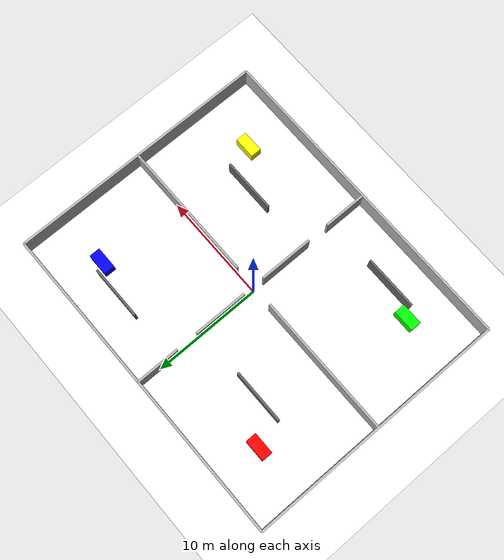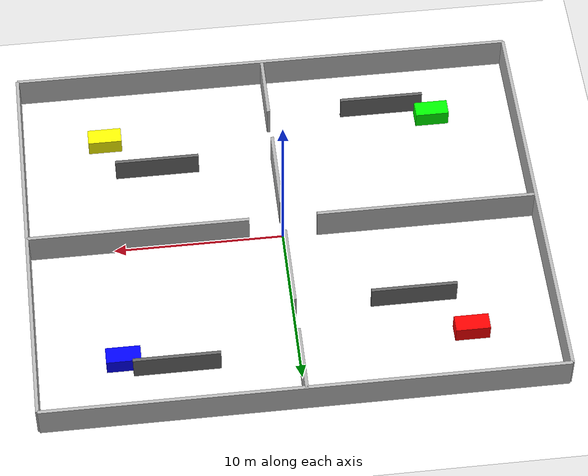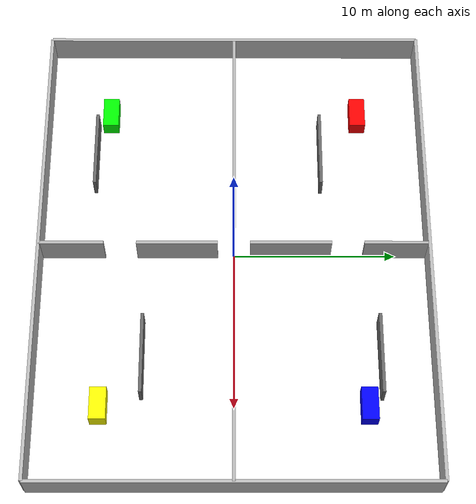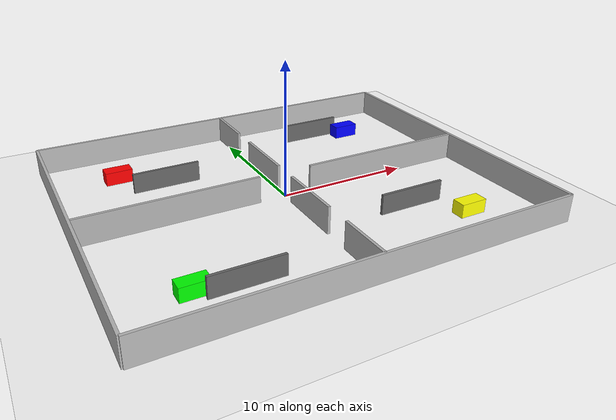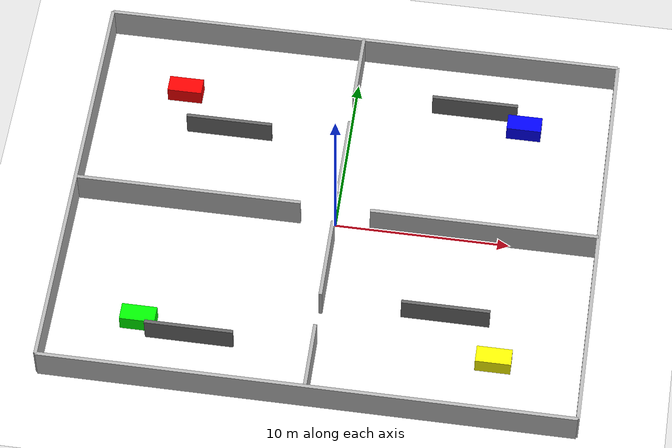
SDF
<?xml version="1.0"?>
<sdf version="1.7">
  <world name="warehouse">

    <!-- Plugins needed for the simulation                     -->
    <!-- Gazebo uses system plugins to enable core features   -->

    <!-- Physics engine: enables dynamics simulation
     (gravity, collisions, wheel motion, forces) -->
    <plugin name='gz::sim::systems::Physics'
      filename='gz-sim-physics-system' />

    <!-- User commands: allows external commands such as
     spawning or deleting entities from ROS or CLI -->
    <plugin name='gz::sim::systems::UserCommands'
      filename='gz-sim-user-commands-system' />

    <!-- Scene broadcaster: sends simulation updates to
     the GUI so objects move correctly in the viewer -->
    <plugin name='gz::sim::systems::SceneBroadcaster'
      filename='gz-sim-scene-broadcaster-system' />

    <!-- Contact system: enables collision detection and
     contact information. Critical for physics interactions -->
    <plugin name='gz::sim::systems::Contact'
      filename='gz-sim-contact-system' />

    <!-- Sensors system: enables simulated sensors such as
     LiDAR, cameras, IMU, etc. Without this plugin
     sensors exist but do not produce data -->
    <plugin name='gz::sim::systems::Sensors'
      filename='gz-sim-sensors-system' />

    <!-- Rendering engine used by sensors.
       "ogre2" is standard but WSL2 often works better with "ogre". -->

    <physics name='1ms' type='ignored'>
      <max_step_size>0.001</max_step_size>
      <real_time_factor>1</real_time_factor>
      <real_time_update_rate>1000</real_time_update_rate>
    </physics>

    <scene>
      <ambient>0.400000006 0.400000006 0.400000006 1</ambient>
      <background>0.699999988 0.699999988 0.699999988 1</background>
      <shadows>true</shadows>
    </scene>

    <light name='sun' type='directional'>
      <pose>0 0 10 0 0 0</pose>
      <cast_shadows>true</cast_shadows>
      <intensity>1</intensity>
      <direction>-0.5 0.10000000000000001 -0.90000000000000002</direction>
      <diffuse>0.800000012 0.800000012 0.800000012 1</diffuse>
      <specular>0.200000003 0.200000003 0.200000003 1</specular>
      <attenuation>
        <range>1000</range>
        <linear>0.01</linear>
        <constant>0.90000000000000002</constant>
        <quadratic>0.001</quadratic>
      </attenuation>
      <spot>
        <inner_angle>0</inner_angle>
        <outer_angle>0</outer_angle>
        <falloff>0</falloff>
      </spot>
    </light>

    <!-- Sun -->

    <!-- White floor -->
    <model name="white_floor">
      <static>true</static>
      <pose>0 0 0 0 0 0</pose>

      <link name="floor_link">

        <collision name="collision">
          <geometry>
            <plane>
              <normal>0 0 1</normal>
              <size>40 40</size>
            </plane>
          </geometry>
        </collision>

        <visual name="visual">
          <geometry>
            <plane>
              <normal>0 0 1</normal>
              <size>40 40</size>
            </plane>
          </geometry>

          <material>
            <ambient>1 1 1 1</ambient>
            <diffuse>1 1 1 1</diffuse>
            <specular>0.1 0.1 0.1 1</specular>
          </material>

        </visual>

      </link>
    </model>
    <!-- OUTER WALLS -->

    <model name="wall_north">
      <static>true</static>
      <pose>0 12 1 0 0 0</pose>
      <link name="link">
        <collision name="collision">
          <geometry>
            <box>
              <size>30 0.2 2</size>
            </box>
          </geometry>
        </collision>
        <visual name="visual">
          <geometry>
            <box>
              <size>30 0.2 2</size>
            </box>
          </geometry>
        </visual>
      </link>
    </model>

    <model name="wall_south">
      <static>true</static>
      <pose>0 -12 1 0 0 0</pose>
      <link name="link">
        <collision name="collision">
          <geometry>
            <box>
              <size>30 0.2 2</size>
            </box>
          </geometry>
        </collision>
        <visual name="visual">
          <geometry>
            <box>
              <size>30 0.2 2</size>
            </box>
          </geometry>
        </visual>
      </link>
    </model>

    <model name="wall_east">
      <static>true</static>
      <pose>15 0 1 0 0 0</pose>
      <link name="link">
        <collision name="collision">
          <geometry>
            <box>
              <size>0.2 24 2</size>
            </box>
          </geometry>
        </collision>
        <visual name="visual">
          <geometry>
            <box>
              <size>0.2 24 2</size>
            </box>
          </geometry>
        </visual>
      </link>
    </model>

    <model name="wall_west">
      <static>true</static>
      <pose>-15 0 1 0 0 0</pose>
      <link name="link">
        <collision name="collision">
          <geometry>
            <box>
              <size>0.2 24 2</size>
            </box>
          </geometry>
        </collision>
        <visual name="visual">
          <geometry>
            <box>
              <size>0.2 24 2</size>
            </box>
          </geometry>
        </visual>
      </link>
    </model>

    <!-- INTERNAL WALLS -->

    <!-- Horizontal wall across the middle with one central opening -->
    <model name="mid_wall_left">
      <static>true</static>
      <pose>-8.5 0 1 0 0 0</pose>
      <link name="link">
        <collision name="collision">
          <geometry>
            <box>
              <size>13 0.2 2</size>
            </box>
          </geometry>
        </collision>
        <visual name="visual">
          <geometry>
            <box>
              <size>13 0.2 2</size>
            </box>
          </geometry>
          <material>
            <ambient>0.7 0.7 0.7 1</ambient>
            <diffuse>0.7 0.7 0.7 1</diffuse>
          </material>
        </visual>
      </link>
    </model>

    <model name="mid_wall_right">
      <static>true</static>
      <pose>8.5 0 1 0 0 0</pose>
      <link name="link">
        <collision name="collision">
          <geometry>
            <box>
              <size>13 0.2 2</size>
            </box>
          </geometry>
        </collision>
        <visual name="visual">
          <geometry>
            <box>
              <size>13 0.2 2</size>
            </box>
          </geometry>
          <material>
            <ambient>0.7 0.7 0.7 1</ambient>
            <diffuse>0.7 0.7 0.7 1</diffuse>
          </material>
        </visual>
      </link>
    </model>

    <!-- Vertical wall across the middle with offset openings -->
    <!-- top segment -->
    <model name="mid_vertical_top">
      <static>true</static>
      <pose>0 10 1 0 0 0</pose>
      <link name="link">
        <collision name="collision">
          <geometry>
            <box>
              <size>0.2 4 2</size>
            </box>
          </geometry>
        </collision>
        <visual name="visual">
          <geometry>
            <box>
              <size>0.2 4 2</size>
            </box>
          </geometry>
          <material>
            <ambient>0.7 0.7 0.7 1</ambient>
            <diffuse>0.7 0.7 0.7 1</diffuse>
          </material>
        </visual>
      </link>
    </model>

    <!-- upper-middle segment -->
    <model name="mid_vertical_upper">
      <static>true</static>
      <pose>0 3.5 1 0 0 0</pose>
      <link name="link">
        <collision name="collision">
          <geometry>
            <box>
              <size>0.2 5 2</size>
            </box>
          </geometry>
        </collision>
        <visual name="visual">
          <geometry>
            <box>
              <size>0.2 5 2</size>
            </box>
          </geometry>
          <material>
            <ambient>0.7 0.7 0.7 1</ambient>
            <diffuse>0.7 0.7 0.7 1</diffuse>
          </material>
        </visual>
      </link>
    </model>

    <!-- lower-middle segment -->
    <model name="mid_vertical_lower">
      <static>true</static>
      <pose>0 -3.5 1 0 0 0</pose>
      <link name="link">
        <collision name="collision">
          <geometry>
            <box>
              <size>0.2 5 2</size>
            </box>
          </geometry>
        </collision>
        <visual name="visual">
          <geometry>
            <box>
              <size>0.2 5 2</size>
            </box>
          </geometry>
          <material>
            <ambient>0.7 0.7 0.7 1</ambient>
            <diffuse>0.7 0.7 0.7 1</diffuse>
          </material>
        </visual>
      </link>
    </model>

    <!-- bottom segment -->
    <model name="mid_vertical_bottom">
      <static>true</static>
      <pose>0 -10 1 0 0 0</pose>
      <link name="link">
        <collision name="collision">
          <geometry>
            <box>
              <size>0.2 4 2</size>
            </box>
          </geometry>
        </collision>
        <visual name="visual">
          <geometry>
            <box>
              <size>0.2 4 2</size>
            </box>
          </geometry>
          <material>
            <ambient>0.7 0.7 0.7 1</ambient>
            <diffuse>0.7 0.7 0.7 1</diffuse>
          </material>
        </visual>
      </link>
    </model>

    <!-- LOCAL BLOCKERS / AISLE OBSTACLES -->

    <!-- Top-left quadrant blocker -->
    <model name="blocker_tl">
      <static>true</static>
      <pose>-7 5.5 0.75 0 0 0</pose>
      <link name="link">
        <collision name="collision">
          <geometry>
            <box>
              <size>5 0.2 1.5</size>
            </box>
          </geometry>
        </collision>
        <visual name="visual">
          <geometry>
            <box>
              <size>5 0.2 1.5</size>
            </box>
          </geometry>
          <material>
            <ambient>0.4 0.4 0.4 1</ambient>
            <diffuse>0.4 0.4 0.4 1</diffuse>
          </material>
        </visual>
      </link>
    </model>

    <!-- Top-right quadrant blocker -->
    <model name="blocker_tr">
      <static>true</static>
      <pose>7 8.8 0.75 0 0 0</pose>
      <link name="link">
        <collision name="collision">
          <geometry>
            <box>
              <size>5 0.2 1.5</size>
            </box>
          </geometry>
        </collision>
        <visual name="visual">
          <geometry>
            <box>
              <size>5 0.2 1.5</size>
            </box>
          </geometry>
          <material>
            <ambient>0.4 0.4 0.4 1</ambient>
            <diffuse>0.4 0.4 0.4 1</diffuse>
          </material>
        </visual>
      </link>
    </model>

    <!-- Bottom-left quadrant blocker -->
    <model name="blocker_bl">
      <static>true</static>
      <pose>-7 -8.8 0.75 0 0 0</pose>
      <link name="link">
        <collision name="collision">
          <geometry>
            <box>
              <size>5 0.2 1.5</size>
            </box>
          </geometry>
        </collision>
        <visual name="visual">
          <geometry>
            <box>
              <size>5 0.2 1.5</size>
            </box>
          </geometry>
          <material>
            <ambient>0.4 0.4 0.4 1</ambient>
            <diffuse>0.4 0.4 0.4 1</diffuse>
          </material>
        </visual>
      </link>
    </model>

    <!-- Bottom-right quadrant blocker -->
    <model name="blocker_br">
      <static>true</static>
      <pose>7 -5.5 0.75 0 0 0</pose>
      <link name="link">
        <collision name="collision">
          <geometry>
            <box>
              <size>5 0.2 1.5</size>
            </box>
          </geometry>
        </collision>
        <visual name="visual">
          <geometry>
            <box>
              <size>5 0.2 1.5</size>
            </box>
          </geometry>
          <material>
            <ambient>0.4 0.4 0.4 1</ambient>
            <diffuse>0.4 0.4 0.4 1</diffuse>
          </material>
        </visual>
      </link>
    </model>

    <!-- SHELVES / COLORED BOXES -->

    <model name="shelf_red">
      <static>true</static>
      <pose>-10 8 0.5 0 0 0</pose>
      <link name="link">
        <collision name="collision">
          <geometry>
            <box>
              <size>2 1 1</size>
            </box>
          </geometry>
        </collision>
        <visual name="visual">
          <geometry>
            <box>
              <size>2 1 1</size>
            </box>
          </geometry>
          <material>
            <ambient>1 0 0 1</ambient>
            <diffuse>1 0 0 1</diffuse>
          </material>
        </visual>
      </link>
    </model>

    <model name="shelf_blue">
      <static>true</static>
      <pose>10 8 0.5 0 0 0</pose>
      <link name="link">
        <collision name="collision">
          <geometry>
            <box>
              <size>2 1 1</size>
            </box>
          </geometry>
        </collision>
        <visual name="visual">
          <geometry>
            <box>
              <size>2 1 1</size>
            </box>
          </geometry>
          <material>
            <ambient>0 0 1 1</ambient>
            <diffuse>0 0 1 1</diffuse>
          </material>
        </visual>
      </link>
    </model>

    <model name="shelf_green">
      <static>true</static>
      <pose>-10 -8 0.5 0 0 0</pose>
      <link name="link">
        <collision name="collision">
          <geometry>
            <box>
              <size>2 1 1</size>
            </box>
          </geometry>
        </collision>
        <visual name="visual">
          <geometry>
            <box>
              <size>2 1 1</size>
            </box>
          </geometry>
          <material>
            <ambient>0 1 0 1</ambient>
            <diffuse>0 1 0 1</diffuse>
          </material>
        </visual>
      </link>
    </model>

    <model name="shelf_yellow">
      <static>true</static>
      <pose>10 -8 0.5 0 0 0</pose>
      <link name="link">
        <collision name="collision">
          <geometry>
            <box>
              <size>2 1 1</size>
            </box>
          </geometry>
        </collision>
        <visual name="visual">
          <geometry>
            <box>
              <size>2 1 1</size>
            </box>
          </geometry>
          <material>
            <ambient>1 1 0 1</ambient>
            <diffuse>1 1 0 1</diffuse>
          </material>
        </visual>
      </link>
    </model>

  </world>
</sdf>
